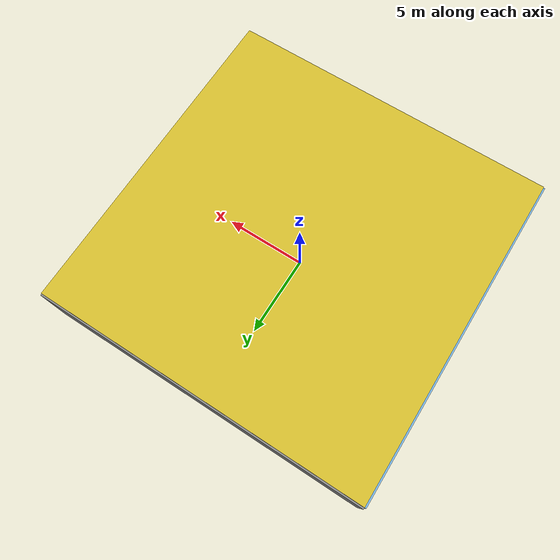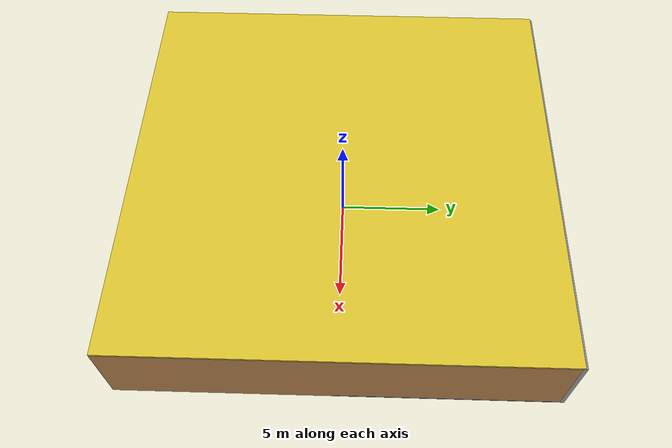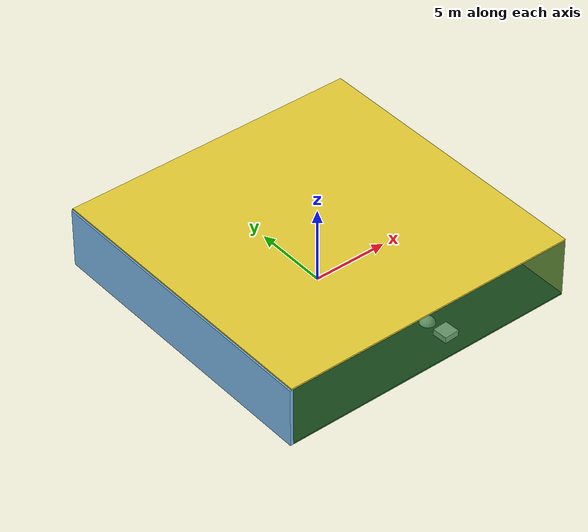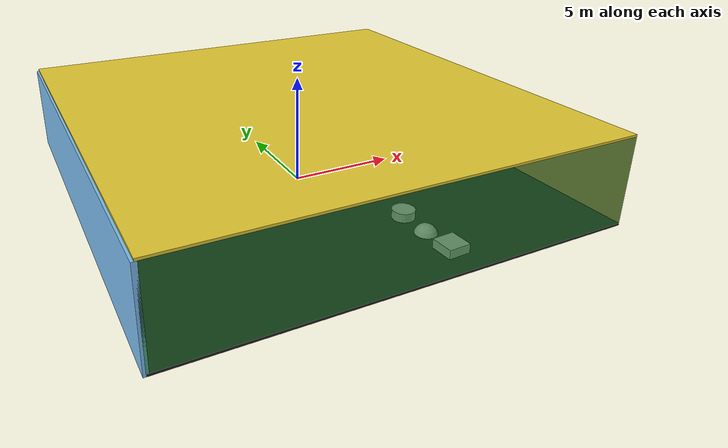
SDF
<sdf version="1.4">
 <world name="default">
  <physics type="ode">
   <max_step_size>0.001</max_step_size>
   <real_time_factor>1</real_time_factor>
   <real_time_update_rate>1000</real_time_update_rate>
   <gravity>0 0 -9.8</gravity>
  </physics>
  <scene><ambient>0.4 0.4 0.4 1</ambient><background>0.7 0.7 0.7 1</background><shadows>1</shadows></scene>
  <model name="Surrounding">
   <static>1</static>
   <link name="Ceiling">
    <collision name="Ceiling_Collision"><geometry><box><size>20 20 0.1</size></box></geometry></collision>
    <visual name="Ceiling_Visual">
     <geometry><box><size>20 20 0.1</size></box></geometry>
     <material>
      <script><uri>file://media/materials/scripts/gazebo.material</uri><name>Gazebo/ZincYellow</name></script>
     </material>
    </visual>
    <pose>0 0 4.05 0 0 0</pose>
   </link>
   <link name="Wall_South">
    <collision name="Wall_South_Collision">
     <geometry><box><size>20 0 4</size></box></geometry>
     <pose>0 0 2 0 -0 0</pose>
    </collision>
    <visual name="Wall_South_Visual">
     <pose>0 0 2 0 -0 0</pose>
     <geometry><box><size>20 0 4</size></box></geometry>
     <material>
      <script><uri>file://media/materials/scripts/gazebo.material</uri><name>Gazebo/GreenTransparent</name></script>
     </material>
    </visual>
    <velocity_decay><linear>0</linear><angular>0</angular></velocity_decay>
    <pose>0 -10 0 0 -0 0</pose>
   </link>
   <link name="Wall_East">
    <collision name="Wall_21_Collision">
     <geometry><box><size>20 0 4</size></box></geometry>
     <pose>0 0 2 0 -0 0</pose>
    </collision>
    <visual name="Wall_21_Visual">
     <pose>0 0 2 0 -0 0</pose>
     <geometry><box><size>20 0 4</size></box></geometry>
     <material>
      <script><uri>file://media/materials/scripts/gazebo.material</uri><name>Gazebo/Wood</name></script>
     </material>
    </visual>
    <velocity_decay><linear>0</linear><angular>0</angular></velocity_decay>
    <pose>10 0 0 0 -0 1.5708</pose>
   </link>
   <link name="Wall_North">
    <collision name="Wall_22_Collision">
     <geometry><box><size>20 0.2 4</size></box></geometry>
     <pose>0 0 2 0 -0 0</pose>
    </collision>
    <visual name="Wall_22_Visual">
     <pose>0 0 2 0 -0 0</pose>
     <geometry><box><size>20 0.2 4</size></box></geometry>
     <material>
      <script><uri>file://media/materials/scripts/gazebo.material</uri><name>Gazebo/GreyGradientSky</name></script>
     </material>
    </visual>
    <velocity_decay><linear>0</linear><angular>0</angular></velocity_decay>
    <pose>0 10 0 0 -0 0</pose>
   </link>
   <link name="Wall_West">
    <collision name="Wall_23_Collision">
     <geometry><box><size>20 0.2 4</size></box></geometry>
     <pose>0 0 2 0 -0 0</pose>
    </collision>
    <visual name="Wall_23_Visual">
     <pose>0 0 2 0 -0 0</pose>
     <geometry><box><size>20 0.2 4</size></box></geometry>
     <material>
      <script><uri>file://media/materials/scripts/gazebo.material</uri><name>Gazebo/SkyBlue</name></script>
     </material>
    </visual>
    <velocity_decay><linear>0</linear><angular>0</angular></velocity_decay>
    <pose>-10 0 0 0 0 -1.5708</pose>
   </link>
   <link name="Ground_link">
    <collision name="collision">
     <pose>0 0 .05 0 -0 0</pose>
     <geometry><box><size>20 20 0.1</size></box></geometry>
    </collision>
    <visual name="visual">
     <pose>0 0 .05 0 -0 0</pose>
     <geometry><box><size>20 20 0.1</size></box></geometry>
     <material>
      <script><uri>file://media/materials/scripts/gazebo.material</uri><name>Gazebo/FlatBlack</name></script>
     </material>
    </visual>
   </link>
   <static>1</static>
  </model>
  <spherical_coordinates>
   <surface_model>EARTH_WGS84</surface_model>
   <latitude_deg>0</latitude_deg>
   <longitude_deg>0</longitude_deg>
   <elevation>0</elevation>
   <heading_deg>0</heading_deg>
  </spherical_coordinates>
  <light name="lightball_0" type="diffuse">
   <diffuse>0.8 0.8 0.8 1</diffuse>
   <specular>0.2 0.2 0.2 1</specular>
   <attenuation>
    <range>100</range>
    <constant>0.7</constant>
    <linear>0.01</linear>
    <quadratic>0.001</quadratic>
   </attenuation>
   <direction>-0.5 0.1 -0.9</direction>
   <pose>-8.82534869951 9.52931162859 2.67673349098 0 0 0</pose>
  </light>
  <light name="lightball_1" type="diffuse">
   <diffuse>0.8 0.8 0.8 1</diffuse>
   <specular>0.2 0.2 0.2 1</specular>
   <attenuation>
    <range>100</range>
    <constant>0.7</constant>
    <linear>0.01</linear>
    <quadratic>0.001</quadratic>
   </attenuation>
   <direction>-0.5 0.1 -0.9</direction>
   <pose>7.59700037025 -7.85026200115 2.11339935118 0 0 0</pose>
  </light>
  <light name="lightball_2" type="diffuse">
   <diffuse>0.8 0.8 0.8 1</diffuse>
   <specular>0.2 0.2 0.2 1</specular>
   <attenuation>
    <range>100</range>
    <constant>0.7</constant>
    <linear>0.01</linear>
    <quadratic>0.001</quadratic>
   </attenuation>
   <direction>-0.5 0.1 -0.9</direction>
   <pose>-8.54481794349 -6.72813958498 2.12323434832 0 0 0</pose>
  </light>
  <light name="lightball_3" type="diffuse">
   <diffuse>0.8 0.8 0.8 1</diffuse>
   <specular>0.2 0.2 0.2 1</specular>
   <attenuation>
    <range>100</range>
    <constant>0.7</constant>
    <linear>0.01</linear>
    <quadratic>0.001</quadratic>
   </attenuation>
   <direction>-0.5 0.1 -0.9</direction>
   <pose>0.27848964585 4.90154850995 0.873990110949 0 0 0</pose>
  </light>
  <light name="lightball_4" type="diffuse">
   <diffuse>0.8 0.8 0.8 1</diffuse>
   <specular>0.2 0.2 0.2 1</specular>
   <attenuation>
    <range>100</range>
    <constant>0.7</constant>
    <linear>0.01</linear>
    <quadratic>0.001</quadratic>
   </attenuation>
   <direction>-0.5 0.1 -0.9</direction>
   <pose>-6.12267897013 -0.56597595084 3.20894324617 0 0 0</pose>
  </light>
  <light name="lightball_5" type="diffuse">
   <diffuse>0.8 0.8 0.8 1</diffuse>
   <specular>0.2 0.2 0.2 1</specular>
   <attenuation>
    <range>100</range>
    <constant>0.7</constant>
    <linear>0.01</linear>
    <quadratic>0.001</quadratic>
   </attenuation>
   <direction>-0.5 0.1 -0.9</direction>
   <pose>1.17497096972 2.1106992493 3.28816312693 0 0 0</pose>
  </light>
  <light name="lightball_6" type="diffuse">
   <diffuse>0.8 0.8 0.8 1</diffuse>
   <specular>0.2 0.2 0.2 1</specular>
   <attenuation>
    <range>100</range>
    <constant>0.7</constant>
    <linear>0.01</linear>
    <quadratic>0.001</quadratic>
   </attenuation>
   <direction>-0.5 0.1 -0.9</direction>
   <pose>9.76668956251 -3.12805893125 3.1483177714 0 0 0</pose>
  </light>
  <include>
   <uri>model://construction_cone</uri>
   <pose>-6.56754174565 -1.08906741956 0 0 0 0.0851486439905</pose>
  </include>
  <include><uri>model://table</uri><pose>-8.68071493018 4.15298297635 0 0 0 3.12701777972</pose></include>
  <include><uri>model://cabinet</uri><pose>-1.63684641103 8.27684152895 0 0 0 0.963908702618</pose></include>
  <include>
   <uri>model://textured_shapes</uri>
   <pose>2.30871330063 -7.05049471235 0 0 0 0.0504167980997</pose>
  </include>
  <include>
   <uri>model://robocup_3Dsim_goal</uri>
   <pose>3.87688883284 8.69966307375 0 0 0 0.251349550555</pose>
  </include>
 </world>
</sdf>

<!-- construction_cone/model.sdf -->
<sdf version="1.5">
  <model name="Construction Cone">
    <link name="link">
      <collision name="collision">
        <geometry>
          <mesh>
            <scale>10 10 10</scale>
            <uri>file://isr-testbed/construction_cone/meshes/construction_cone.dae</uri>
          </mesh>
        </geometry>
      </collision>
      <visual name="visual">
        <geometry>
          <mesh>
            <scale>10 10 10</scale>
            <uri>file://isr-testbed/construction_cone/meshes/construction_cone.dae</uri>
          </mesh>
        </geometry>
      </visual>
    </link>
  </model>
</sdf>

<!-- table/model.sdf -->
<sdf version="1.5">
  <model name="table">
    <static>true</static>
    <link name="link">
      <collision name="surface">
        <pose>0 0 1.0 0 0 0</pose>
        <geometry>
          <box>
            <size>1.5 0.8 0.03</size>
          </box>
        </geometry>
        <surface>
          <friction>
            <ode>
              <mu>0.6</mu>
              <mu2>0.6</mu2>
            </ode>
          </friction>
        </surface>
      </collision>
      <visual name="visual1">
        <pose>0 0 1.0 0 0 0</pose>
        <geometry>
          <box>
            <size>1.5 0.8 0.03</size>
          </box>
        </geometry>
        <material>
          <script>
            <uri>model://media/materials/scripts/gazebo.material</uri>
            <name>Gazebo/Wood</name>
          </script>
        </material>
      </visual>
      <collision name="front_left_leg">
        <pose>0.68 0.38 0.5 0 0 0</pose>
        <geometry>
          <cylinder>
            <radius>0.02</radius>
            <length>1.0</length>
          </cylinder>
        </geometry>
      </collision>
      <visual name="front_left_leg">
        <pose>0.68 0.38 0.5 0 0 0</pose>
        <geometry>
          <cylinder>
            <radius>0.02</radius>
            <length>1.0</length>
          </cylinder>
        </geometry>
        <material>
          <script>
            <uri>model://media/materials/scripts/gazebo.material</uri>
            <name>Gazebo/Grey</name>
          </script>
        </material>
      </visual>
      <collision name="front_right_leg">
        <pose>0.68 -0.38 0.5 0 0 0</pose>
        <geometry>
          <cylinder>
            <radius>0.02</radius>
            <length>1.0</length>
          </cylinder>
        </geometry>
      </collision>
      <visual name="front_right_leg">
        <pose>0.68 -0.38 0.5 0 0 0</pose>
        <geometry>
          <cylinder>
            <radius>0.02</radius>
            <length>1.0</length>
          </cylinder>
        </geometry>
        <material>
          <script>
            <uri>model://media/materials/scripts/gazebo.material</uri>
            <name>Gazebo/Grey</name>
          </script>
        </material>
      </visual>
      <collision name="back_right_leg">
        <pose>-0.68 -0.38 0.5 0 0 0</pose>
        <geometry>
          <cylinder>
            <radius>0.02</radius>
            <length>1.0</length>
          </cylinder>
        </geometry>
      </collision>
      <visual name="back_right_leg">
        <pose>-0.68 -0.38 0.5 0 0 0</pose>
        <geometry>
          <cylinder>
            <radius>0.02</radius>
            <length>1.0</length>
          </cylinder>
        </geometry>
        <material>
          <script>
            <uri>model://media/materials/scripts/gazebo.material</uri>
            <name>Gazebo/Grey</name>
          </script>
        </material>
      </visual>
      <collision name="back_left_leg">
        <pose>-0.68 0.38 0.5 0 0 0</pose>
        <geometry>
          <cylinder>
            <radius>0.02</radius>
            <length>1.0</length>
          </cylinder>
        </geometry>
      </collision>
      <visual name="back_left_leg">
        <pose>-0.68 0.38 0.5 0 0 0</pose>
        <geometry>
          <cylinder>
            <radius>0.02</radius>
            <length>1.0</length>
          </cylinder>
        </geometry>
        <material>
          <script>
            <uri>model://media/materials/scripts/gazebo.material</uri>
            <name>Gazebo/Grey</name>
          </script>
        </material>
      </visual>
    </link>
  </model>
</sdf>

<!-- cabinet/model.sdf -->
<sdf version="1.5">
  <model name="cabinet">
    <static>true</static>
    <link name="cabinet_bottom_plate">
      <inertial>
        <pose>0 0 -1 0 0 0</pose>
        <inertia>
          <ixx>2.050000</ixx>
          <ixy>0</ixy>
          <ixz>0</ixz>
          <iyy>2.050000</iyy>
          <iyz>0</iyz>
          <izz>2.050000</izz>
        </inertia>
        <mass>25.000000</mass>
      </inertial>
      <collision name="cabinet_bottom_plate_geom">
        <pose>0 0 0.010000 0 0 0</pose>
        <geometry>
          <box>
            <size>0.450000 0.450000 0.020000</size>
          </box>
        </geometry>
      </collision>
      <visual name="cabinet_bottom_plate_geom_visual">
        <pose>0 0 0.010000 0 0 0</pose>
        <geometry>
          <box>
            <size>0.450000 0.450000 0.020000</size>
          </box>
        </geometry>
        <material>
          <script>
            <uri>model://media/materials/scripts/gazebo.material</uri>
            <name>Gazebo/Wood</name>
          </script>
        </material>
      </visual>
      <collision name="cabinet_bottom_plate_geom_cabinet_back_plate">
        <pose>0.235000 0 0.510000 0 0 0</pose>
        <geometry>
          <box>
            <size>0.020000 0.450000 1.020000</size>
          </box>
        </geometry>
      </collision>
      <visual name="cabinet_bottom_plate_geom_cabinet_back_plate_visual">
        <pose>0.235000 0 0.510000 0 0 0</pose>
        <geometry>
          <box>
            <size>0.020000 0.450000 1.020000</size>
          </box>
        </geometry>
        <material>
          <script>
            <uri>model://media/materials/scripts/gazebo.material</uri>
            <name>Gazebo/Wood</name>
          </script>
        </material>
      </visual>
      <collision name="cabinet_bottom_plate_geom_cabinet_left_plate">
        <pose>0 0.235000 0.510000 0 0 0</pose>
        <geometry>
          <box>
            <size>0.450000 0.020000 1.020000</size>
          </box>
        </geometry>
      </collision>
      <visual name="cabinet_bottom_plate_geom_cabinet_left_plate_visual">
        <pose>0 0.235000 0.510000 0 0 0</pose>
        <geometry>
          <box>
            <size>0.450000 0.020000 1.020000</size>
          </box>
        </geometry>
        <material>
          <script>
            <uri>model://media/materials/scripts/gazebo.material</uri>
            <name>Gazebo/Wood</name>
          </script>
        </material>
      </visual>
      <collision name="cabinet_bottom_plate_geom_cabinet_middle_plate">
        <pose>0 0 0.510000 0 0 0</pose>
        <geometry>
          <box>
            <size>0.450000 0.450000 0.020000</size>
          </box>
        </geometry>
      </collision>
      <visual name="cabinet_bottom_plate_geom_cabinet_middle_plate_visual">
        <pose>0 0 0.510000 0 0 0</pose>
        <geometry>
          <box>
            <size>0.450000 0.450000 0.020000</size>
          </box>
        </geometry>
        <material>
          <script>
            <uri>model://media/materials/scripts/gazebo.material</uri>
            <name>Gazebo/Wood</name>
          </script>
        </material>
      </visual>
      <collision name="cabinet_bottom_plate_geom_cabinet_right_plate">
        <pose>0 -0.235000 0.510000 0 0 0</pose>
        <geometry>
          <box>
            <size>0.450000 0.020000 1.020000</size>
          </box>
        </geometry>
      </collision>
      <visual name="cabinet_bottom_plate_geom_cabinet_right_plate_visual">
        <pose>0 -0.235000 0.510000 0 0 0</pose>
        <geometry>
          <box>
            <size>0.450000 0.020000 1.020000</size>
          </box>
        </geometry>
        <material>
          <script>
            <uri>model://media/materials/scripts/gazebo.material</uri>
            <name>Gazebo/Wood</name>
          </script>
        </material>
      </visual>
      <collision name="cabinet_bottom_plate_geom_cabinet_top_plate">
        <pose>0 0 1.010000 0 0 0</pose>
        <geometry>
          <box>
            <size>0.450000 0.450000 0.020000</size>
          </box>
        </geometry>
      </collision>
      <visual name="cabinet_bottom_plate_geom_cabinet_top_plate_visual">
        <pose>0 0 1.010000 0 0 0</pose>
        <geometry>
          <box>
            <size>0.450000 0.450000 0.020000</size>
          </box>
        </geometry>
        <material>
          <script>
            <uri>model://media/materials/scripts/gazebo.material</uri>
            <name>Gazebo/Wood</name>
          </script>
        </material>
      </visual>
    </link>
  </model>
</sdf>

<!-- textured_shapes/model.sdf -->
<sdf version="1.6">
  <model name="textured_shapes">
    <pose>0 0 0.5 0 0 0</pose>
    <link name="box">
      <pose>0 -1.5 0 0 0 0</pose>
      <collision name="collision">
        <geometry>
          <box>
            <size>1 1 1</size>
          </box>
        </geometry>
      </collision>
      <visual name="visual">
        <geometry>
          <box>
            <size>1 1 1</size>
          </box>
        </geometry>
        <material>
          <script>
            <uri>model://../model_source/models/textured_shapes/materials/scripts</uri>
            <uri>model://../model_source/models/textured_shapes/materials/textures</uri>
            <name>TexturedShape/Squares</name>
          </script>
        </material>
      </visual>
    </link>
    <link name="sphere">
      <collision name="collision">
        <geometry>
          <sphere>
            <radius>0.5</radius>
          </sphere>
        </geometry>
      </collision>
      <visual name="visual">
        <geometry>
          <sphere>
            <radius>0.5</radius>
          </sphere>
        </geometry>
        <material>
          <script>
            <uri>model://../model_source/models/textured_shapes/materials/scripts</uri>
            <uri>model://../model_source/models/textured_shapes/materials/textures</uri>
            <name>TexturedShape/Squares</name>
          </script>
        </material>
      </visual>
    </link>
    <link name="cylinder">
      <pose>0 1.5 0 0 0 0</pose>
      <collision name="collision">
        <geometry>
          <cylinder>
            <radius>0.5</radius>
            <length>1</length>
          </cylinder>
        </geometry>
      </collision>
      <visual name="visual">
        <geometry>
          <cylinder>
            <radius>0.5</radius>
            <length>1</length>
          </cylinder>
        </geometry>
        <material>
          <script>
            <uri>model://../model_source/models/textured_shapes/materials/scripts</uri>
            <uri>model://../model_source/models/textured_shapes/materials/textures</uri>
            <name>TexturedShape/Squares</name>
          </script>
        </material>
      </visual>
    </link>
  </model>
</sdf>

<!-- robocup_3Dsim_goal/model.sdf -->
<sdf version="1.5">
  <model name="robocup_3d_goal">
    <static>true</static>
    <link name="left_post">
      <pose>0 1.05 0.45 0 0 0</pose>
      <collision name="collision">
        <geometry>
          <cylinder>
            <radius>0.05</radius>
            <length>0.9</length>
          </cylinder>
        </geometry>
      </collision>
      <visual name="visual">
        <geometry>
          <cylinder>
            <radius>0.05</radius>
            <length>0.9</length>
          </cylinder>
        </geometry>
        <material>
          <script>
            <uri>file://media/materials/scripts/gazebo.material</uri>
            <name>Gazebo/ZincYellow</name>
          </script>
        </material>
      </visual>
    </link>
    <link name="left_support_horiz_lower">
      <pose>0.30 1.05 0.01 0 0 0</pose>
      <collision name="collision">
        <geometry>
          <box>
            <size>0.50 0.02 0.02</size>
          </box>
        </geometry>
      </collision>
      <visual name="visual">
        <geometry>
          <box>
            <size>0.50 0.02 0.02</size>
          </box>
        </geometry>
        <material>
          <script>
            <uri>file://media/materials/scripts/gazebo.material</uri>
            <name>Gazebo/White</name>
          </script>
        </material>
      </visual>
    </link>
    <link name="left_support_horiz_upper">
      <pose>0.30 1.05 0.79 0 0 0</pose>
      <collision name="collision">
        <geometry>
          <box>
            <size>0.50 0.02 0.02</size>
          </box>
        </geometry>
      </collision>
      <visual name="visual">
        <geometry>
          <box>
            <size>0.50 0.02 0.02</size>
          </box>
        </geometry>
        <material>
          <script>
            <uri>file://media/materials/scripts/gazebo.material</uri>
            <name>Gazebo/White</name>
          </script>
        </material>
      </visual>
    </link>
    <link name="left_support_vertical">
      <pose>0.56 1.05 0.4 0 1.5708 0</pose>
      <collision name="collision">
        <geometry>
          <box>
            <size>0.80 0.02 0.02</size>
          </box>
        </geometry>
      </collision>
      <visual name="visual">
        <geometry>
          <box>
            <size>0.80 0.02 0.02</size>
          </box>
        </geometry>
        <material>
          <script>
            <uri>file://media/materials/scripts/gazebo.material</uri>
            <name>Gazebo/White</name>
          </script>
        </material>
      </visual>
    </link>
    <link name="right_support_horiz_lower">
      <pose>0.30 -1.05 0.01 0 0 0</pose>
      <collision name="collision">
        <geometry>
          <box>
            <size>0.50 0.02 0.02</size>
          </box>
        </geometry>
      </collision>
      <visual name="visual">
        <geometry>
          <box>
            <size>0.50 0.02 0.02</size>
          </box>
        </geometry>
        <material>
          <script>
            <uri>file://media/materials/scripts/gazebo.material</uri>
            <name>Gazebo/White</name>
          </script>
        </material>
      </visual>
    </link>
    <link name="right_support_horiz_upper">
      <pose>0.30 -1.05 0.79 0 0 0</pose>
      <collision name="collision">
        <geometry>
          <box>
            <size>0.50 0.02 0.02</size>
          </box>
        </geometry>
      </collision>
      <visual name="visual">
        <geometry>
          <box>
            <size>0.50 0.02 0.02</size>
          </box>
        </geometry>
        <material>
          <script>
            <uri>file://media/materials/scripts/gazebo.material</uri>
            <name>Gazebo/White</name>
          </script>
        </material>
      </visual>
    </link>
    <link name="right_support_vertical">
      <pose>0.56 -1.05 0.4 0 1.5708 0</pose>
      <collision name="collision">
        <geometry>
          <box>
            <size>0.80 0.02 0.02</size>
          </box>
        </geometry>
      </collision>
      <visual name="visual">
        <geometry>
          <box>
            <size>0.80 0.02 0.02</size>
          </box>
        </geometry>
        <material>
          <script>
            <uri>file://media/materials/scripts/gazebo.material</uri>
            <name>Gazebo/White</name>
          </script>
        </material>
      </visual>
    </link>
    <link name="center_support_horiz_lower">
      <pose>0.56 0 0.01 0 1.5708 0</pose>
      <collision name="collision">
        <geometry>
          <box>
            <size>0.02 2.08 0.02</size>
          </box>
        </geometry>
      </collision>
      <visual name="visual">
        <geometry>
          <box>
            <size>0.02 2.08 0.02</size>
          </box>
        </geometry>
        <material>
          <script>
            <uri>file://media/materials/scripts/gazebo.material</uri>
            <name>Gazebo/White</name>
          </script>
        </material>
      </visual>
    </link>
    <link name="center_support_horiz_upper">
      <pose>0.56 0 0.79 0 1.5708 0</pose>
      <collision name="collision">
        <geometry>
          <box>
            <size>0.02 2.08 0.02</size>
          </box>
        </geometry>
      </collision>
      <visual name="visual">
        <geometry>
          <box>
            <size>0.02 2.08 0.02</size>
          </box>
        </geometry>
        <material>
          <script>
            <uri>file://media/materials/scripts/gazebo.material</uri>
            <name>Gazebo/White</name>
          </script>
        </material>
      </visual>
    </link>
    <link name="right_post">
      <pose>0 -1.05 0.45 0 0 0</pose>
      <collision name="collision">
        <geometry>
          <cylinder>
            <radius>0.05</radius>
            <length>0.9</length>
          </cylinder>
        </geometry>
      </collision>
      <visual name="visual">
        <geometry>
          <cylinder>
            <radius>0.05</radius>
            <length>0.9</length>
          </cylinder>
        </geometry>
        <material>
          <script>
            <uri>file://media/materials/scripts/gazebo.material</uri>
            <name>Gazebo/ZincYellow</name>
          </script>
        </material>
      </visual>
    </link>
    <link name="crossbar">
      <pose>0 0 0.85 1.57 1.57 0</pose>
      <collision name="collision">
        <geometry>
          <cylinder>
            <radius>0.05</radius>
            <length>2.0</length>
          </cylinder>
        </geometry>
      </collision>
      <visual name="visual">
        <geometry>
          <cylinder>
            <radius>0.05</radius>
            <length>2.0</length>
          </cylinder>
        </geometry>
        <material>
          <script>
            <uri>file://media/materials/scripts/gazebo.material</uri>
            <name>Gazebo/ZincYellow</name>
          </script>
        </material>
      </visual>
    </link>
    <link name="center_net">
      <pose>0.56 0 0.40 0 0 0</pose>
      <collision name="collision">
        <geometry>
          <box>
            <size>0.01 2.1 0.80</size>
          </box>
        </geometry>
      </collision>
      <visual name="visual">
        <geometry>
          <box>
            <size>0.01 2.1 0.80</size>
          </box>
        </geometry>
        <material>
          <script>
            <uri>model://../model_source/models/robocup09_spl_field/materials/scripts/</uri>
            <uri>model://../model_source/models/robocup09_spl_field/materials/textures/</uri>
            <name>RoboCup/Net</name>
          </script>
        </material>
      </visual>
    </link>
    <link name="left_net">
      <pose>0.30 1.05 0.40 0 0 0</pose>
      <collision name="collision">
        <geometry>
          <box>
            <size>0.50 0.01 0.76</size>
          </box>
        </geometry>
      </collision>
      <visual name="visual">
        <geometry>
          <box>
            <size>0.50 0.01 0.76</size>
          </box>
        </geometry>
        <material>
          <script>
            <uri>model://../model_source/models/robocup09_spl_field/materials/scripts/</uri>
            <uri>model://../model_source/models/robocup09_spl_field/materials/textures/</uri>
            <name>RoboCup/Net</name>
          </script>
        </material>
      </visual>
    </link>
    <link name="right_net">
      <pose>0.30 -1.05 0.40 0 0 0</pose>
      <collision name="collision">
        <geometry>
          <box>
            <size>0.50 0.01 0.76</size>
          </box>
        </geometry>
      </collision>
      <visual name="visual">
        <geometry>
          <box>
            <size>0.50 0.01 0.76</size>
          </box>
        </geometry>
        <material>
          <script>
            <uri>model://../model_source/models/robocup09_spl_field/materials/scripts/</uri>
            <uri>model://../model_source/models/robocup09_spl_field/materials/textures/</uri>
            <name>RoboCup/Net</name>
          </script>
        </material>
      </visual>
    </link>
  </model>
</sdf>
